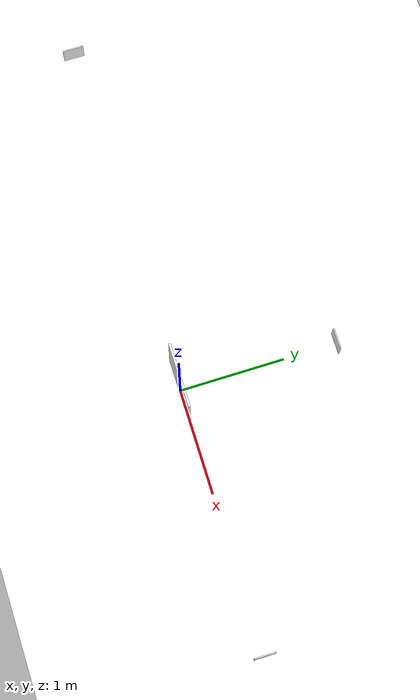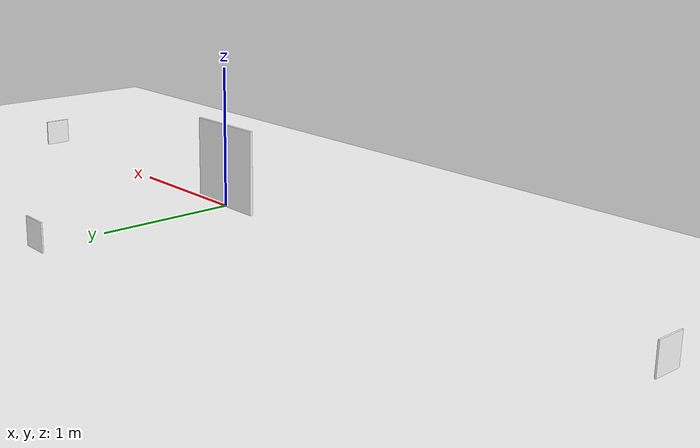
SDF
<?xml version="1.0" ?>
<sdf version="1.8">
  <world name="foraging_arena">

    <physics name="1ms" type="ignored">
      <max_step_size>0.001</max_step_size>
      <real_time_factor>1.0</real_time_factor>
    </physics>

    <plugin filename="gz-sim-physics-system"           name="gz::sim::systems::Physics"/>
    <plugin filename="gz-sim-user-commands-system"     name="gz::sim::systems::UserCommands"/>
    <plugin filename="gz-sim-scene-broadcaster-system" name="gz::sim::systems::SceneBroadcaster"/>
    <plugin filename="gz-sim-sensors-system"           name="gz::sim::systems::Sensors">
      <render_engine>ogre2</render_engine>
    </plugin>

    <light type="directional" name="sun">
      <cast_shadows>false</cast_shadows>
      <pose>0 0 10 0 0 0</pose>
      <diffuse>1.0 1.0 1.0 1</diffuse>
      <specular>0.3 0.3 0.3 1</specular>
      <direction>0 0 -1</direction>
    </light>
    <light type="directional" name="fill">
      <cast_shadows>false</cast_shadows>
      <pose>0 0 8 0 0 0</pose>
      <diffuse>0.7 0.7 0.7 1</diffuse>
      <specular>0.1 0.1 0.1 1</specular>
      <direction>0 0.2 -0.98</direction>
    </light>

    <model name="ground_plane">
      <static>true</static>
      <link name="link">
        <collision name="collision">
          <geometry><plane><normal>0 0 1</normal><size>20 20</size></plane></geometry>
        </collision>
        <visual name="visual">
          <geometry><plane><normal>0 0 1</normal><size>20 20</size></plane></geometry>
          <material>
            <ambient>1.0 1.0 1.0 1</ambient>
            <diffuse>1.0 1.0 1.0 1</diffuse>
            <specular>0.0 0.0 0.0 1</specular>
          </material>
        </visual>
      </link>
    </model>

    <include>
      <uri>model://aruco_home</uri>
      <name>home_base</name>
      <pose>0.0 0.0 0.3 0 1.5708 1.5708</pose>
    </include>

    <include>
      <uri>model://aruco_res1</uri>
      <name>resource_1</name>
      <pose>0.0 1.5 0.1 0 1.5708 1.5708</pose>
    </include>

    <include>
      <uri>model://aruco_res2</uri>
      <name>resource_2</name>
      <pose>2.5 0.0 0.1 0 1.5708 0.0</pose>
    </include>

    <include>
      <uri>model://aruco_res3</uri>
      <name>resource_3</name>
      <pose>-3.5 0.0 0.1 0 1.5708 0.0</pose>
    </include>

  </world>
</sdf>

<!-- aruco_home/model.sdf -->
<sdf version="1.8">
  <model name="aruco_home">
    <static>true</static>
    <link name="link">
      <visual name="visual">
        <geometry><box><size>0.6 0.6 0.02</size></box></geometry>
        <material><diffuse>1 1 1 1</diffuse><pbr><metal><albedo_map>model://aruco_home/materials/textures/marker_0.png</albedo_map></metal></pbr></material>
      </visual>
      <collision name="collision">
        <geometry><box><size>0.6 0.6 0.02</size></box></geometry>
      </collision>
    </link>
  </model>
</sdf>

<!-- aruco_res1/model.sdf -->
<sdf version="1.8">
  <model name="aruco_res1">
    <static>true</static>
    <link name="link">
      <visual name="visual">
        <geometry><box><size>0.2 0.2 0.01</size></box></geometry>
        <material><diffuse>1 1 1 1</diffuse><pbr><metal><albedo_map>model://aruco_res1/materials/textures/marker_1.png</albedo_map></metal></pbr></material>
      </visual>
      <collision name="collision">
        <geometry><box><size>0.2 0.2 0.01</size></box></geometry>
      </collision>
    </link>
  </model>
</sdf>

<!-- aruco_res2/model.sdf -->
<sdf version="1.8">
  <model name="aruco_res2">
    <static>true</static>
    <link name="link">
      <visual name="visual">
        <geometry><box><size>0.2 0.2 0.01</size></box></geometry>
        <material><diffuse>1 1 1 1</diffuse><pbr><metal><albedo_map>model://aruco_res2/materials/textures/marker_2.png</albedo_map></metal></pbr></material>
      </visual>
      <collision name="collision">
        <geometry><box><size>0.2 0.2 0.01</size></box></geometry>
      </collision>
    </link>
  </model>
</sdf>

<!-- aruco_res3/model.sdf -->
<sdf version="1.8">
  <model name="aruco_res3">
    <static>true</static>
    <link name="link">
      <visual name="visual">
        <geometry><box><size>0.2 0.2 0.01</size></box></geometry>
        <material><diffuse>1 1 1 1</diffuse><pbr><metal><albedo_map>model://aruco_res3/materials/textures/marker_3.png</albedo_map></metal></pbr></material>
      </visual>
      <collision name="collision">
        <geometry><box><size>0.2 0.2 0.01</size></box></geometry>
      </collision>
    </link>
  </model>
</sdf>
